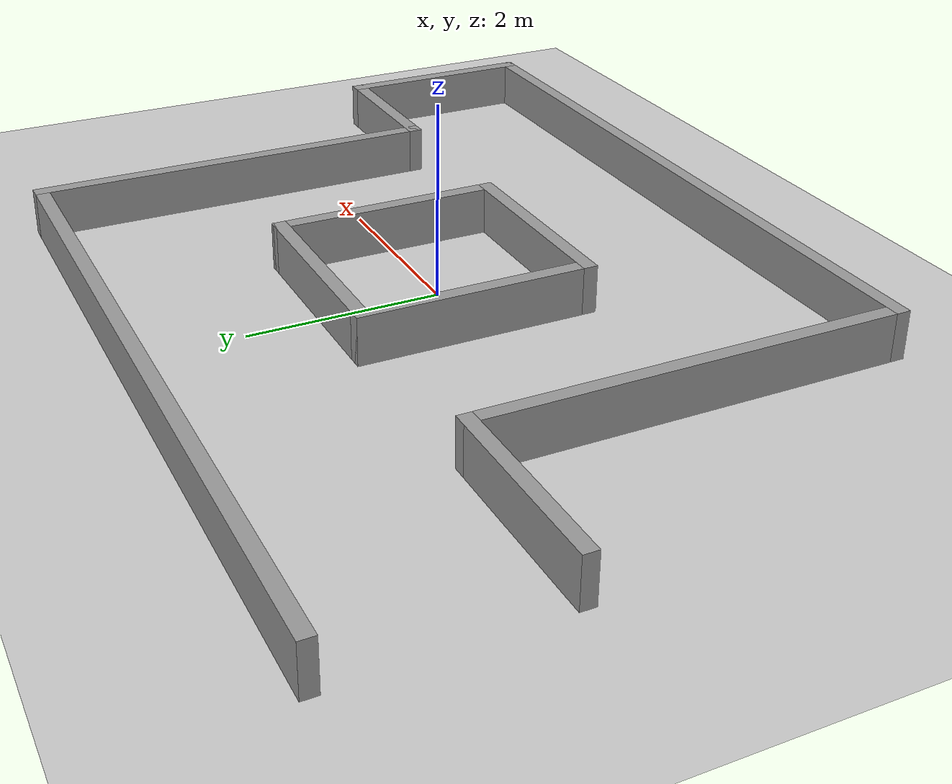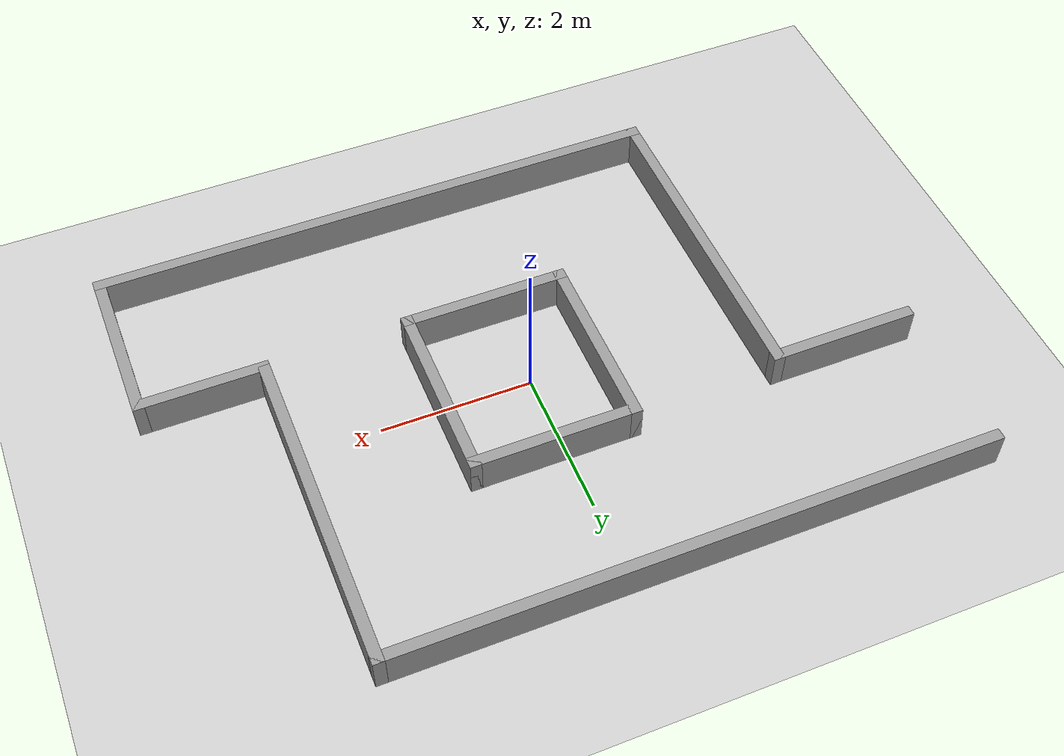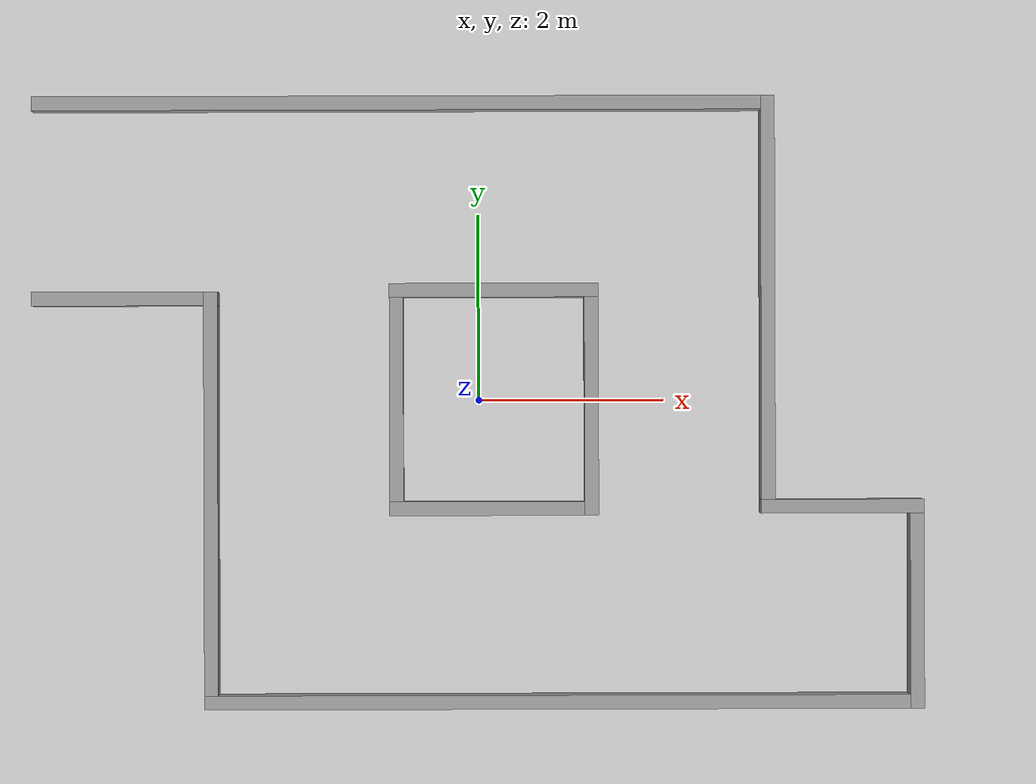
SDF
<sdf version="1.4">
  <world name="default">

    <scene>
      <ambient>0.4 0.4 0.4 1</ambient>
      <background>0.7 0.7 0.7 1</background>
      <shadows>true</shadows>
    </scene>

    <!-- A global light source -->
    <include>
      <uri>model://sun</uri>
    </include>

    <!-- A ground plane -->
    <include>
      <uri>model://ground_plane</uri>
    </include>

    <!-- Maze -->
    <include>
      <uri>model://maze_1</uri>
    </include>

    <physics type="ode">
      <real_time_update_rate>1000.0</real_time_update_rate>
      <max_step_size>0.001</max_step_size>
      <real_time_factor>1</real_time_factor>
      <ode>
        <solver>
          <type>quick</type>
          <iters>150</iters>
          <precon_iters>0</precon_iters>
          <sor>1.400000</sor>
          <use_dynamic_moi_rescaling>1</use_dynamic_moi_rescaling>
        </solver>
        <constraints>
          <cfm>0.00001</cfm>
          <erp>0.2</erp>
          <contact_max_correcting_vel>2000.000000</contact_max_correcting_vel>
          <contact_surface_layer>0.01000</contact_surface_layer>
        </constraints>
      </ode>
    </physics>
  </world>

</sdf>

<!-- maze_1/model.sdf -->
<sdf version='1.7'>
  <model name='maze_1'>
    <pose>-0.013 -0.022 0 0 -0 0</pose>
    <link name='Wall_1'>
      <collision name='Wall_1_Collision'>
        <geometry>
          <box>
            <size>2.25 0.15 0.5</size>
          </box>
        </geometry>
        <pose>0 0 0.25 0 -0 0</pose>
      </collision>
      <visual name='Wall_1_Visual'>
        <pose>0 0 0.25 0 -0 0</pose>
        <geometry>
          <box>
            <size>2.25 0.15 0.5</size>
          </box>
        </geometry>
        <material>
          <script>
            <uri>file://media/materials/scripts/gazebo.material</uri>
            <name>Gazebo/Grey</name>
          </script>
          <ambient>1 1 1 1</ambient>
        </material>
        <meta>
          <layer>0</layer>
        </meta>
      </visual>
      <pose>0.174 1.209 0 0 -0 0</pose>
    </link>
    <link name='Wall_14'>
      <collision name='Wall_14_Collision'>
        <geometry>
          <box>
            <size>1.75 0.15 0.5</size>
          </box>
        </geometry>
        <pose>0 0 0.25 0 -0 0</pose>
      </collision>
      <visual name='Wall_14_Visual'>
        <pose>0 0 0.25 0 -0 0</pose>
        <geometry>
          <box>
            <size>1.75 0.15 0.5</size>
          </box>
        </geometry>
        <material>
          <script>
            <uri>file://media/materials/scripts/gazebo.material</uri>
            <name>Gazebo/Grey</name>
          </script>
          <ambient>1 1 1 1</ambient>
        </material>
        <meta>
          <layer>0</layer>
        </meta>
      </visual>
      <pose>3.925 -1.125 0 0 -0 3.14159</pose>
    </link>
    <link name='Wall_15'>
      <collision name='Wall_15_Collision'>
        <geometry>
          <box>
            <size>4.5 0.15 0.5</size>
          </box>
        </geometry>
        <pose>0 0 0.25 0 -0 0</pose>
      </collision>
      <visual name='Wall_15_Visual'>
        <pose>0 0 0.25 0 -0 0</pose>
        <geometry>
          <box>
            <size>4.5 0.15 0.5</size>
          </box>
        </geometry>
        <material>
          <script>
            <uri>file://media/materials/scripts/gazebo.material</uri>
            <name>Gazebo/Grey</name>
          </script>
          <ambient>1 1 1 1</ambient>
        </material>
        <meta>
          <layer>0</layer>
        </meta>
      </visual>
      <pose>3.125 1.05 0 0 -0 1.5708</pose>
    </link>
    <link name='Wall_16'>
      <collision name='Wall_16_Collision'>
        <geometry>
          <box>
            <size>8 0.15 0.5</size>
          </box>
        </geometry>
        <pose>0 0 0.25 0 -0 0</pose>
      </collision>
      <visual name='Wall_16_Visual'>
        <pose>0 0 0.25 0 -0 0</pose>
        <geometry>
          <box>
            <size>8 0.15 0.5</size>
          </box>
        </geometry>
        <material>
          <script>
            <uri>file://media/materials/scripts/gazebo.material</uri>
            <name>Gazebo/Grey</name>
          </script>
          <ambient>1 1 1 1</ambient>
        </material>
        <meta>
          <layer>0</layer>
        </meta>
      </visual>
      <pose>-0.8 3.225 0 0 -0 3.14159</pose>
    </link>
    <link name='Wall_18'>
      <collision name='Wall_18_Collision'>
        <geometry>
          <box>
            <size>2.25 0.15 0.5</size>
          </box>
        </geometry>
        <pose>0 0 0.25 0 -0 0</pose>
      </collision>
      <visual name='Wall_18_Visual'>
        <pose>0 0 0.25 0 -0 0</pose>
        <geometry>
          <box>
            <size>2.25 0.15 0.5</size>
          </box>
        </geometry>
        <material>
          <script>
            <uri>file://media/materials/scripts/gazebo.material</uri>
            <name>Gazebo/Grey</name>
          </script>
          <ambient>1 1 1 1</ambient>
        </material>
        <meta>
          <layer>0</layer>
        </meta>
      </visual>
      <pose>4.725 -2.175 0 0 -0 -1.5708</pose>
    </link>
    <link name='Wall_19'>
      <collision name='Wall_19_Collision'>
        <geometry>
          <box>
            <size>7.75 0.15 0.5</size>
          </box>
        </geometry>
        <pose>0 0 0.25 0 -0 0</pose>
      </collision>
      <visual name='Wall_19_Visual'>
        <pose>0 0 0.25 0 -0 0</pose>
        <geometry>
          <box>
            <size>7.75 0.15 0.5</size>
          </box>
        </geometry>
        <material>
          <script>
            <uri>file://media/materials/scripts/gazebo.material</uri>
            <name>Gazebo/Grey</name>
          </script>
          <ambient>1 1 1 1</ambient>
        </material>
        <meta>
          <layer>0</layer>
        </meta>
      </visual>
      <pose>0.925 -3.225 0 0 -0 3.14159</pose>
    </link>
    <link name='Wall_2'>
      <collision name='Wall_2_Collision'>
        <geometry>
          <box>
            <size>2.5 0.15 0.5</size>
          </box>
        </geometry>
        <pose>0 0 0.25 0 -0 0</pose>
      </collision>
      <visual name='Wall_2_Visual'>
        <pose>0 0 0.25 0 -0 0</pose>
        <geometry>
          <box>
            <size>2.5 0.15 0.5</size>
          </box>
        </geometry>
        <material>
          <script>
            <uri>file://media/materials/scripts/gazebo.material</uri>
            <name>Gazebo/Grey</name>
          </script>
          <ambient>1 1 1 1</ambient>
        </material>
        <meta>
          <layer>0</layer>
        </meta>
      </visual>
      <pose>1.224 0.034 0 0 -0 -1.5708</pose>
    </link>
    <link name='Wall_20'>
      <collision name='Wall_20_Collision'>
        <geometry>
          <box>
            <size>4.5 0.15 0.5</size>
          </box>
        </geometry>
        <pose>0 0 0.25 0 -0 0</pose>
      </collision>
      <visual name='Wall_20_Visual'>
        <pose>0 0 0.25 0 -0 0</pose>
        <geometry>
          <box>
            <size>4.5 0.15 0.5</size>
          </box>
        </geometry>
        <material>
          <script>
            <uri>file://media/materials/scripts/gazebo.material</uri>
            <name>Gazebo/Grey</name>
          </script>
          <ambient>1 1 1 1</ambient>
        </material>
        <meta>
          <layer>0</layer>
        </meta>
      </visual>
      <pose>-2.875 -1.05 0 0 -0 1.5708</pose>
    </link>
    <link name='Wall_21'>
      <collision name='Wall_21_Collision'>
        <geometry>
          <box>
            <size>2 0.15 0.5</size>
          </box>
        </geometry>
        <pose>0 0 0.25 0 -0 0</pose>
      </collision>
      <visual name='Wall_21_Visual'>
        <pose>0 0 0.25 0 -0 0</pose>
        <geometry>
          <box>
            <size>2 0.15 0.5</size>
          </box>
        </geometry>
        <material>
          <script>
            <uri>file://media/materials/scripts/gazebo.material</uri>
            <name>Gazebo/Grey</name>
          </script>
          <ambient>1 1 1 1</ambient>
        </material>
        <meta>
          <layer>0</layer>
        </meta>
      </visual>
      <pose>-3.8 1.125 0 0 -0 3.14159</pose>
    </link>
    <link name='Wall_3'>
      <collision name='Wall_3_Collision'>
        <geometry>
          <box>
            <size>2.25 0.15 0.5</size>
          </box>
        </geometry>
        <pose>0 0 0.25 0 -0 0</pose>
      </collision>
      <visual name='Wall_3_Visual'>
        <pose>0 0 0.25 0 -0 0</pose>
        <geometry>
          <box>
            <size>2.25 0.15 0.5</size>
          </box>
        </geometry>
        <material>
          <script>
            <uri>file://media/materials/scripts/gazebo.material</uri>
            <name>Gazebo/Grey</name>
          </script>
          <ambient>1 1 1 1</ambient>
        </material>
        <meta>
          <layer>0</layer>
        </meta>
      </visual>
      <pose>0.174 -1.141 0 0 -0 3.14159</pose>
    </link>
    <link name='Wall_4'>
      <collision name='Wall_4_Collision'>
        <geometry>
          <box>
            <size>2.5 0.15 0.5</size>
          </box>
        </geometry>
        <pose>0 0 0.25 0 -0 0</pose>
      </collision>
      <visual name='Wall_4_Visual'>
        <pose>0 0 0.25 0 -0 0</pose>
        <geometry>
          <box>
            <size>2.5 0.15 0.5</size>
          </box>
        </geometry>
        <material>
          <script>
            <uri>file://media/materials/scripts/gazebo.material</uri>
            <name>Gazebo/Grey</name>
          </script>
          <ambient>1 1 1 1</ambient>
        </material>
        <meta>
          <layer>0</layer>
        </meta>
      </visual>
      <pose>-0.876 0.034 0 0 -0 1.5708</pose>
    </link>
    <static>1</static>
  </model>
</sdf>
